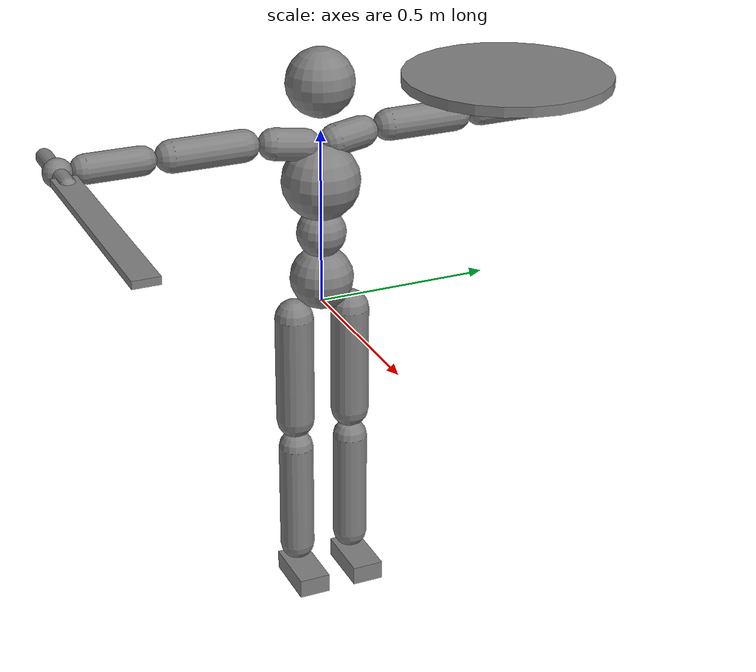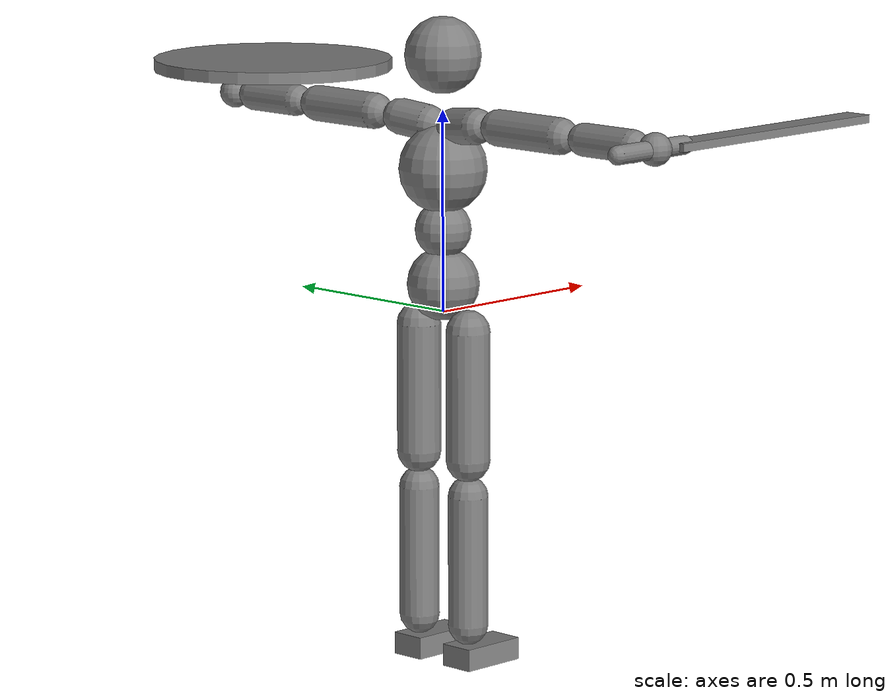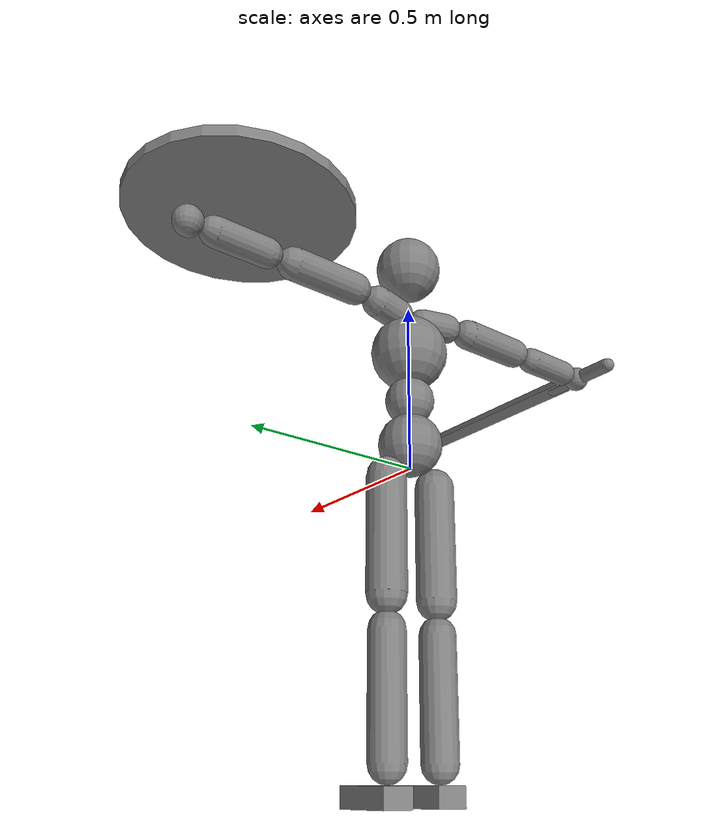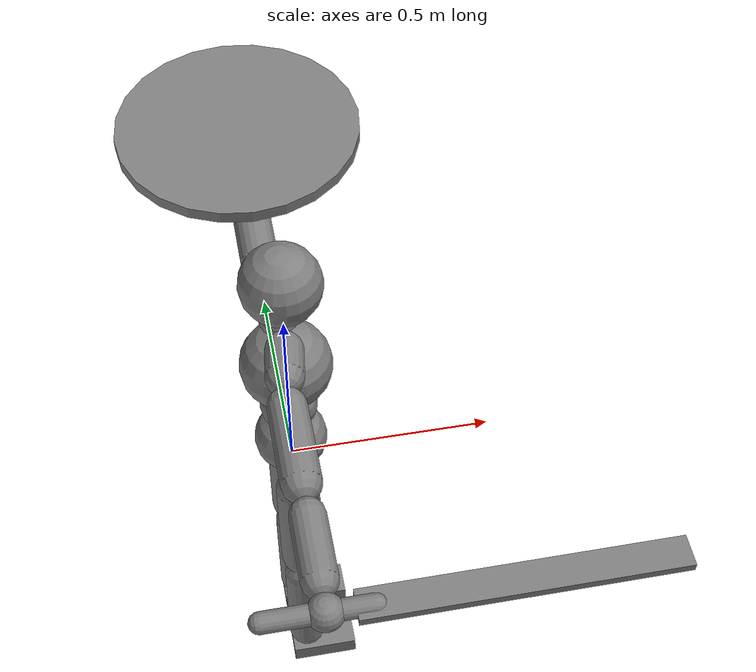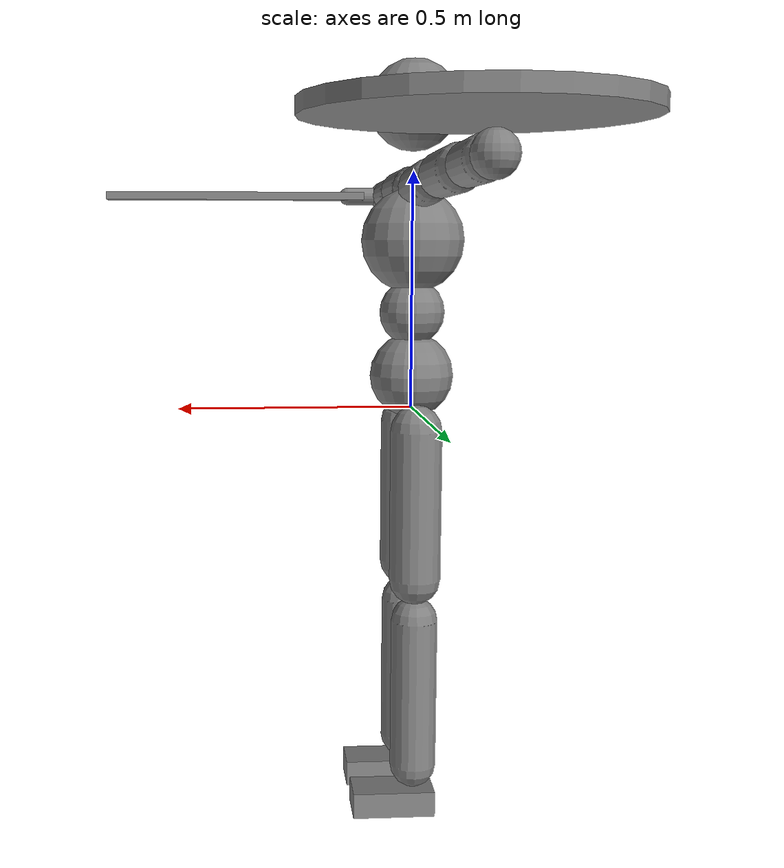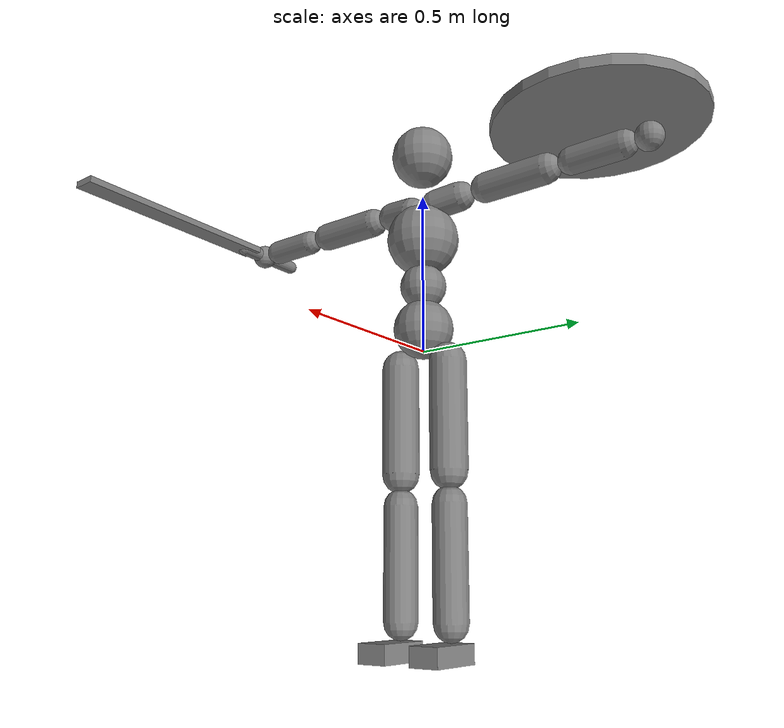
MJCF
<mujoco model="humanoid">
  <compiler angle="radian"/>

  <default>
    <motor ctrlrange="-1 1" ctrllimited="true"/>
    <default class="body">
      <geom condim="1" friction="1.0 0.05 0.05" solimp=".9 .99 .003" solref=".015 1"/>
      <joint limited="true" solimplimit="0 .99 .01"/>
    </default>
  </default>

  <worldbody>
	  <body name="pelvis" pos="0 0 0" childclass="body">
      <freejoint name="root"/>
      <geom name="pelvis" type="sphere" pos="0 0 0.07" size=".09" density="2226"/>
      <geom name="upper_waist" type="sphere" pos="0 0 0.205" size="0.07" density="2226"/>

      <body name="torso" pos="0 0 0.236151">
        <joint name="abdomen_x" type="hinge" axis="1 0 0" range="-1.0472 1.0472" actuatorfrcrange="-200 200" stiffness="1000" damping="100" armature=".02"/>
        <joint name="abdomen_y" type="hinge" axis="0 1 0" range="-1.0472 1.5708" actuatorfrcrange="-200 200" stiffness="1000" damping="100" armature=".02"/>
        <joint name="abdomen_z" type="hinge" axis="0 0 1" range="-1.2217 1.2217" actuatorfrcrange="-200 200" stiffness="1000" damping="100" armature=".02"/>
        <geom name="torso" type="sphere" pos="0 0 0.12" size="0.11" density="1623"/>

        <geom name="right_clavicle" type="capsule" fromto="-0.0060125 -0.0457775 0.2287955 -0.016835 -0.128177 0.2376182" size=".045" density="1623"/>
        <geom name="left_clavicle" type="capsule" fromto="-0.0060125 0.0457775 0.2287955 -0.016835 0.128177 0.2376182" size=".045" density="1623"/>

        <body name="head" pos="0 0 0.223894">
          <joint name="neck_x" type="hinge" axis="1 0 0" range="-0.8727 0.8727" actuatorfrcrange="-50 50" stiffness="100" damping="10" armature=".01"/>
          <joint name="neck_y" type="hinge" axis="0 1 0" range="-0.6981 1.0472" actuatorfrcrange="-50 50" stiffness="100" damping="10" armature=".01"/>
          <joint name="neck_z" type="hinge" axis="0 0 1" range="-0.7854 0.7854" actuatorfrcrange="-50 50" stiffness="100" damping="10" armature=".01"/>
          <geom name="head" type="sphere" pos="0 0 0.175" size="0.095" density="1081"/>
        </body>

        <body name="right_upper_arm" pos="-0.02405 -0.18311 0.24350">
          <joint name="right_shoulder_x" type="hinge" axis="1 0 0" range="-1.9199 2.4435" actuatorfrcrange="-100 100" stiffness="400" damping="40" armature=".02"/>
          <joint name="right_shoulder_y" type="hinge" axis="0 1 0" range="-1.5708 1.5708" actuatorfrcrange="-100 100" stiffness="400" damping="40" armature=".02"/>
          <joint name="right_shoulder_z" type="hinge" axis="0 0 1"  range="-1.0472 2.7925" actuatorfrcrange="-100 100" stiffness="400" damping="40" armature=".02"/>
          <geom name="right_upper_arm" type="capsule" fromto="0 -0.03 0 0 -0.23 0" size=".045" density="982"/>

          <body name="right_lower_arm" pos="0 -0.274788 0">
            <joint name="right_elbow" type="hinge" axis="0 0 1" range="0 2.7925" actuatorfrcrange="-70 70" stiffness="300" damping="30" armature=".01"/>
            <geom name="right_lower_arm" type="capsule" fromto="0 -0.035 0 0 -0.1875 0" size="0.04" density="1056"/>

            <body name="right_hand" pos="0 -0.258947 0">
              <joint name="right_hand_x" type="hinge" axis="1 0 0" range="-1.5708 1.5708" actuatorfrcrange="-50 50" stiffness="100" damping="10" armature=".01"/>
              <joint name="right_hand_y" type="hinge" axis="0 1 0" range="-1.5708 1.5708" actuatorfrcrange="-50 50" stiffness="100" damping="10" armature=".003"/>
              <joint name="right_hand_z" type="hinge" axis="0 0 1"  range="-1.5708 1.5708" actuatorfrcrange="-50 50" stiffness="100" damping="10" armature=".003"/>
              <geom name="right_hand" type="sphere" size=".04" density="1865"/>

              <body name="sword" pos="0.74 0 0">
                <geom name="sword_hilt" type="capsule" fromto="-0.87 0 0 -0.64 0 0" size="0.023" density="600"/>
				<geom name="sword_blade" type="box" pos="-0.34 0 0" size="0.34 0.035 0.01" density="600"/>
              </body>
            </body>
          </body>
        </body>

        <body name="left_upper_arm" pos="-0.02405 0.18311 0.24350">
          <joint name="left_shoulder_x" type="hinge" axis="1 0 0" range="-2.4435 1.9199" actuatorfrcrange="-100 100" stiffness="400" damping="40" armature=".02"/>
          <joint name="left_shoulder_y" type="hinge" axis="0 1 0" range="-1.5708 1.5708" actuatorfrcrange="-100 100" stiffness="400" damping="40" armature=".02"/>
          <joint name="left_shoulder_z" type="hinge" axis="0 0 1"  range="-2.7925 1.0472" actuatorfrcrange="-100 100" stiffness="400" damping="40" armature=".02"/>
          <geom name="left_upper_arm" type="capsule" fromto="0 0.03 0 0 0.23 0" size="0.045" density="982"/>

          <body name="left_lower_arm" pos="0 0.274788 0">
            <joint name="left_elbow" type="hinge" axis="0 0 1" range="-2.7925 0" actuatorfrcrange="-70 70" stiffness="300" damping="30" armature=".01"/>
            <geom name="left_lower_arm" type="capsule" fromto="0 0.035 0 0 0.1875 0" size="0.04" density="1056"/>

            <body name="shield" pos="0 0.12 0.07">
              <geom name="shield" type="cylinder" fromto="0 0 0 0 0 0.03" size="0.3" density="250"/>
            </body>

            <body name="left_hand" pos="0 0.258947 0">
              <geom name="left_hand" type="sphere" size=".04" density="1865"/>
            </body>
          </body>
        </body>
      </body>

      <body name="right_thigh" pos="0 -0.084887 0">
        <joint name="right_hip_x" type="hinge" axis="1 0 0" range="-1.0472 0.5236" actuatorfrcrange="-200 200" stiffness="500" damping="50" armature=".02"/>
        <joint name="right_hip_y" type="hinge" axis="0 1 0" range="-2.4435 1.0472" actuatorfrcrange="-200 200" stiffness="500" damping="50" armature=".02"/>
        <joint name="right_hip_z" type="hinge" axis="0 0 1" range="-1.0472 1.0472" actuatorfrcrange="-200 200" stiffness="500" damping="50" armature=".02"/>
        <geom name="right_thigh" type="capsule" fromto="0 0 -0.04 0 0 -0.36" size="0.055" density="1269"/>

        <body name="right_shin" pos="0 0 -0.421546">
          <joint name="right_knee" type="hinge" axis="0 1 0" range="0 2.7925" actuatorfrcrange="-150 150" stiffness="500" damping="50" armature=".02"/>
          <geom name="right_shin" type="capsule" fromto="0 0 -0.03 0 0 -0.355"  size=".05" density="1014"/>

          <body name="right_foot" pos="0 0 -0.409870">
            <joint name="right_ankle_x" type="hinge" axis="1 0 0" range="-0.5236 0.5236" actuatorfrcrange="-90 90" stiffness="400" damping="40" armature=".01"/>
            <joint name="right_ankle_y" type="hinge" axis="0 1 0" range="-0.9599 0.9599" actuatorfrcrange="-90 90" stiffness="400" damping="40" armature=".01"/>
            <joint name="right_ankle_z" type="hinge" axis="0 0 1" range="-0.6981 0.6981" actuatorfrcrange="-90 90" stiffness="400" damping="40" armature=".01"/>
            <geom name="right_foot" type="box" pos="0.045 0 -0.0225" size="0.0885 0.045 0.0275" density="1141"/>
          </body>
        </body>
      </body>

      <body name="left_thigh" pos="0 0.084887 0">
        <joint name="left_hip_x" type="hinge" axis="1 0 0" range="-0.5236 1.0472" actuatorfrcrange="-200 200" stiffness="500" damping="50" armature=".02"/>
        <joint name="left_hip_y" type="hinge" axis="0 1 0" range="-2.4435 1.0472" actuatorfrcrange="-200 200" stiffness="500" damping="50" armature=".02"/>
        <joint name="left_hip_z" type="hinge" axis="0 0 1" range="-1.0472 1.0472" actuatorfrcrange="-200 200" stiffness="500" damping="50" armature=".02"/>
        <geom name="left_thigh" type="capsule" fromto="0 0 -0.04 0 0 -0.36" size=".055" density="1269"/>

        <body name="left_shin" pos="0 0 -0.421546">
          <joint name="left_knee" type="hinge" axis="0 1 0" range="0 2.7925" actuatorfrcrange="-150 150" stiffness="500" damping="50" armature=".02"/>
          <geom name="left_shin" type="capsule" fromto="0 0 -0.03 0 0 -0.355"  size=".05" density="1014"/>

          <body name="left_foot" pos="0 0 -0.409870">
            <joint name="left_ankle_x" type="hinge" axis="1 0 0" range="-0.5236 0.5236" actuatorfrcrange="-90 90" stiffness="400" damping="40" armature=".01"/>
            <joint name="left_ankle_y" type="hinge" axis="0 1 0" range="-0.9599 0.9599" actuatorfrcrange="-90 90" stiffness="400" damping="40" armature=".01"/>
            <joint name="left_ankle_z" type="hinge" axis="0 0 1" range="-0.6981 0.6981" actuatorfrcrange="-90 90" stiffness="400" damping="40" armature=".01"/>
            <geom name="left_foot" type="box" pos="0.045 0 -0.0225" size="0.0885 0.045 0.0275" density="1141"/>
          </body>
        </body>
      </body>
    </body>
  </worldbody>

  <actuator>
    <motor name='abdomen_x'       	gear='200' 	joint='abdomen_x'/>
    <motor name='abdomen_y'       	gear='200' 	joint='abdomen_y'/>
    <motor name='abdomen_z'       	gear='200' 	joint='abdomen_z'/>
    <motor name='neck_x'          	gear='50' 	joint='neck_x'/>
    <motor name='neck_y'            gear='50' 	joint='neck_y'/>
    <motor name='neck_z'           	gear='50' 	joint='neck_z'/>
    <motor name='right_shoulder_x' 	gear='100' 	joint='right_shoulder_x'/>
    <motor name='right_shoulder_y' 	gear='100' 	joint='right_shoulder_y'/>
    <motor name='right_shoulder_z' 	gear='100' 	joint='right_shoulder_z'/>
    <motor name='right_elbow'     	gear='70' 	joint='right_elbow'/>
    <motor name='right_hand_x' 	  	gear='50' 	joint='right_hand_x'/>
    <motor name='right_hand_y'    	gear='50' 	joint='right_hand_y'/>
    <motor name='right_hand_z'    	gear='50' 	joint='right_hand_z'/>
    <motor name='left_shoulder_x' 	gear='100' 	joint='left_shoulder_x'/>
    <motor name='left_shoulder_y' 	gear='100' 	joint='left_shoulder_y'/>
    <motor name='left_shoulder_z' 	gear='100' 	joint='left_shoulder_z'/>
    <motor name='left_elbow'      	gear='70' 	joint='left_elbow'/>
    <motor name='right_hip_x'     	gear='200' 	joint='right_hip_x'/>
    <motor name='right_hip_z'     	gear='200' 	joint='right_hip_z'/>
    <motor name='right_hip_y'     	gear='200' 	joint='right_hip_y'/>
    <motor name='right_knee'      	gear='150' 	joint='right_knee'/>
    <motor name='right_ankle_x'   	gear='90' 	joint='right_ankle_x'/>
    <motor name='right_ankle_y'   	gear='90' 	joint='right_ankle_y'/>
    <motor name='right_ankle_z'   	gear='90' 	joint='right_ankle_z'/>
    <motor name='left_hip_x'      	gear='200' 	joint='left_hip_x'/>
    <motor name='left_hip_z'      	gear='200' 	joint='left_hip_z'/>
    <motor name='left_hip_y'      	gear='200' 	joint='left_hip_y'/>
    <motor name='left_knee'       	gear='150' 	joint='left_knee'/>
    <motor name='left_ankle_x'    	gear='90' 	joint='left_ankle_x'/>
    <motor name='left_ankle_y'    	gear='90' 	joint='left_ankle_y'/>
    <motor name='left_ankle_z'    	gear='90' 	joint='left_ankle_z'/>
  </actuator>
</mujoco>
